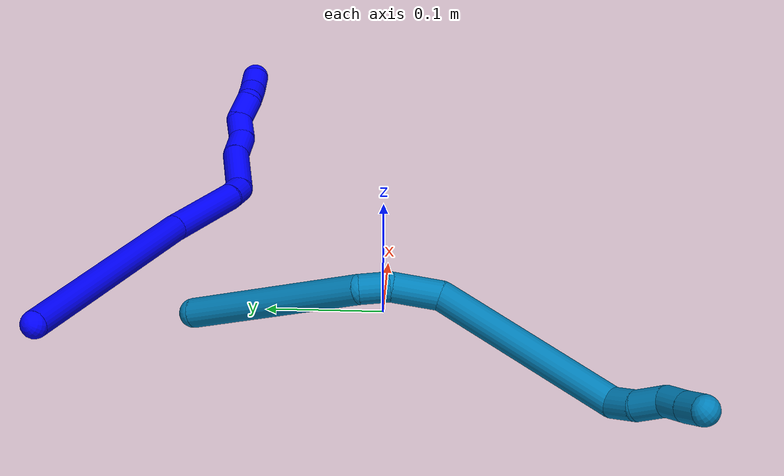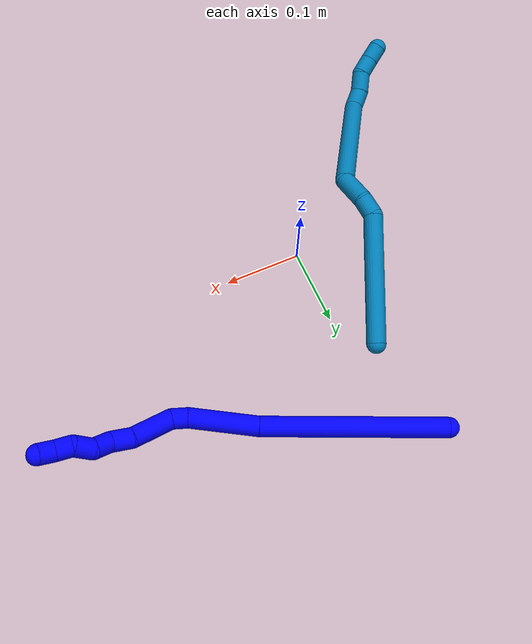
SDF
<sdf version="1.7">
 <world name="default">
  <model name="1">
   <static>0</static>
   <link name="1">
    <collision name="collision-cylinder-e_1_1_4">
     <pose>0.052959 -0.012417 0.09868 0.125169 0.489285 0.031286</pose>
     <geometry><cylinder><radius>0.0125</radius><length>0.225358</length></cylinder></geometry>
     <surface>
      <friction><ode><mu>1.16</mu><mu2>1.16</mu2><slip1>0</slip1><slip2>0</slip2></ode></friction>
      <contact><ode><kp>1e+06</kp><kd>1</kd><max_vel>0</max_vel><min_depth>0.001</min_depth></ode></contact>
     </surface>
    </collision>
    <visual name="visual-cylinder-e_1_1_4">
     <pose>0.052959 -0.012417 0.09868 0.125169 0.489285 0.031286</pose>
     <geometry><cylinder><radius>0.0125</radius><length>0.225358</length></cylinder></geometry>
     <material><ambient>0 0 1 1</ambient></material>
    </visual>
    <collision name="collision-cylinder-e_2_4_5">
     <pose>0.126225 -0.02467 0.234997 -0.00434 0.494817 -0.001096</pose>
     <geometry><cylinder><radius>0.0125</radius><length>0.085532</length></cylinder></geometry>
     <surface>
      <friction><ode><mu>1.16</mu><mu2>1.16</mu2><slip1>0</slip1><slip2>0</slip2></ode></friction>
      <contact><ode><kp>1e+06</kp><kd>1</kd><max_vel>0</max_vel><min_depth>0.001</min_depth></ode></contact>
     </surface>
    </collision>
    <visual name="visual-cylinder-e_2_4_5">
     <pose>0.126225 -0.02467 0.234997 -0.00434 0.494817 -0.001096</pose>
     <geometry><cylinder><radius>0.0125</radius><length>0.085532</length></cylinder></geometry>
     <material><ambient>0 0 1 1</ambient></material>
    </visual>
    <collision name="collision-cylinder-e_3_5_6">
     <pose>0.151455 -0.026395 0.281561 0.208435 0.494575 0.0528</pose>
     <geometry><cylinder><radius>0.0125</radius><length>0.020736</length></cylinder></geometry>
     <surface>
      <friction><ode><mu>1.16</mu><mu2>1.16</mu2><slip1>0</slip1><slip2>0</slip2></ode></friction>
      <contact><ode><kp>1e+06</kp><kd>1</kd><max_vel>0</max_vel><min_depth>0.001</min_depth></ode></contact>
     </surface>
    </collision>
    <visual name="visual-cylinder-e_3_5_6">
     <pose>0.151455 -0.026395 0.281561 0.208435 0.494575 0.0528</pose>
     <geometry><cylinder><radius>0.0125</radius><length>0.020736</length></cylinder></geometry>
     <material><ambient>0 0 1 1</ambient></material>
    </visual>
    <collision name="collision-cylinder-e_4_6_7">
     <pose>0.173511 -0.043278 0.30361 0.851908 0.710239 0.333403</pose>
     <geometry><cylinder><radius>0.0125</radius><length>0.052559</length></cylinder></geometry>
     <surface>
      <friction><ode><mu>1.16</mu><mu2>1.16</mu2><slip1>0</slip1><slip2>0</slip2></ode></friction>
      <contact><ode><kp>1e+06</kp><kd>1</kd><max_vel>0</max_vel><min_depth>0.001</min_depth></ode></contact>
     </surface>
    </collision>
    <visual name="visual-cylinder-e_4_6_7">
     <pose>0.173511 -0.043278 0.30361 0.851908 0.710239 0.333403</pose>
     <geometry><cylinder><radius>0.0125</radius><length>0.052559</length></cylinder></geometry>
     <material><ambient>0 0 1 1</ambient></material>
    </visual>
    <collision name="collision-cylinder-e_5_7_8">
     <pose>0.19982 -0.062773 0.325468 0.475736 0.751078 0.190599</pose>
     <geometry><cylinder><radius>0.0125</radius><length>0.026888</length></cylinder></geometry>
     <surface>
      <friction><ode><mu>1.16</mu><mu2>1.16</mu2><slip1>0</slip1><slip2>0</slip2></ode></friction>
      <contact><ode><kp>1e+06</kp><kd>1</kd><max_vel>0</max_vel><min_depth>0.001</min_depth></ode></contact>
     </surface>
    </collision>
    <visual name="visual-cylinder-e_5_7_8">
     <pose>0.19982 -0.062773 0.325468 0.475736 0.751078 0.190599</pose>
     <geometry><cylinder><radius>0.0125</radius><length>0.026888</length></cylinder></geometry>
     <material><ambient>0 0 1 1</ambient></material>
    </visual>
    <collision name="collision-cylinder-e_6_8_9">
     <pose>0.218655 -0.073269 0.337619 1.05292 0.950582 0.581249</pose>
     <geometry><cylinder><radius>0.0125</radius><length>0.023744</length></cylinder></geometry>
     <surface>
      <friction><ode><mu>1.16</mu><mu2>1.16</mu2><slip1>0</slip1><slip2>0</slip2></ode></friction>
      <contact><ode><kp>1e+06</kp><kd>1</kd><max_vel>0</max_vel><min_depth>0.001</min_depth></ode></contact>
     </surface>
    </collision>
    <visual name="visual-cylinder-e_6_8_9">
     <pose>0.218655 -0.073269 0.337619 1.05292 0.950582 0.581249</pose>
     <geometry><cylinder><radius>0.0125</radius><length>0.023744</length></cylinder></geometry>
     <material><ambient>0 0 1 1</ambient></material>
    </visual>
    <collision name="collision-cylinder-e_7_9_10">
     <pose>0.239248 -0.079718 0.347064 0.075242 1.06565 0.044386</pose>
     <geometry><cylinder><radius>0.0125</radius><length>0.024986</length></cylinder></geometry>
     <surface>
      <friction><ode><mu>1.16</mu><mu2>1.16</mu2><slip1>0</slip1><slip2>0</slip2></ode></friction>
      <contact><ode><kp>1e+06</kp><kd>1</kd><max_vel>0</max_vel><min_depth>0.001</min_depth></ode></contact>
     </surface>
    </collision>
    <visual name="visual-cylinder-e_7_9_10">
     <pose>0.239248 -0.079718 0.347064 0.075242 1.06565 0.044386</pose>
     <geometry><cylinder><radius>0.0125</radius><length>0.024986</length></cylinder></geometry>
     <material><ambient>0 0 1 1</ambient></material>
    </visual>
    <collision name="collision-cylinder-e_8_10_11">
     <pose>0.256061 -0.084327 0.360164 0.53118 0.622002 0.174425</pose>
     <geometry><cylinder><radius>0.0125</radius><length>0.020183</length></cylinder></geometry>
     <surface>
      <friction><ode><mu>1.16</mu><mu2>1.16</mu2><slip1>0</slip1><slip2>0</slip2></ode></friction>
      <contact><ode><kp>1e+06</kp><kd>1</kd><max_vel>0</max_vel><min_depth>0.001</min_depth></ode></contact>
     </surface>
    </collision>
    <visual name="visual-cylinder-e_8_10_11">
     <pose>0.256061 -0.084327 0.360164 0.53118 0.622002 0.174425</pose>
     <geometry><cylinder><radius>0.0125</radius><length>0.020183</length></cylinder></geometry>
     <material><ambient>0 0 1 1</ambient></material>
    </visual>
    <collision name="collision-cylinder-e_9_11_2">
     <pose>0.269401 -0.092162 0.372799 0.584389 0.841222 0.267496</pose>
     <geometry><cylinder><radius>0.0125</radius><length>0.020015</length></cylinder></geometry>
     <surface>
      <friction><ode><mu>1.16</mu><mu2>1.16</mu2><slip1>0</slip1><slip2>0</slip2></ode></friction>
      <contact><ode><kp>1e+06</kp><kd>1</kd><max_vel>0</max_vel><min_depth>0.001</min_depth></ode></contact>
     </surface>
    </collision>
    <visual name="visual-cylinder-e_9_11_2">
     <pose>0.269401 -0.092162 0.372799 0.584389 0.841222 0.267496</pose>
     <geometry><cylinder><radius>0.0125</radius><length>0.020015</length></cylinder></geometry>
     <material><ambient>0 0 1 1</ambient></material>
    </visual>
    <collision name="collision-sphere-2">
     <pose>0.276861 -0.095842 0.378362 0 -0 0</pose>
     <geometry><sphere><radius>0.0125</radius></sphere></geometry>
     <surface>
      <friction><ode><mu>1.16</mu><mu2>1.16</mu2><slip1>0</slip1><slip2>0</slip2></ode></friction>
      <contact><ode><kp>1e+06</kp><kd>1</kd><max_vel>0</max_vel><min_depth>0.001</min_depth></ode></contact>
     </surface>
    </collision>
    <visual name="visual-sphere-2">
     <pose>0.276861 -0.095842 0.378362 0 -0 0</pose>
     <geometry><sphere><radius>0.0125</radius></sphere></geometry>
     <material><ambient>0 0 1 1</ambient></material>
    </visual>
    <collision name="collision-sphere-11">
     <pose>0.261941 -0.088482 0.367235 0 -0 0</pose>
     <geometry><sphere><radius>0.0125</radius></sphere></geometry>
     <surface>
      <friction><ode><mu>1.16</mu><mu2>1.16</mu2><slip1>0</slip1><slip2>0</slip2></ode></friction>
      <contact><ode><kp>1e+06</kp><kd>1</kd><max_vel>0</max_vel><min_depth>0.001</min_depth></ode></contact>
     </surface>
    </collision>
    <visual name="visual-sphere-11">
     <pose>0.261941 -0.088482 0.367235 0 -0 0</pose>
     <geometry><sphere><radius>0.0125</radius></sphere></geometry>
     <material><ambient>0 0 1 1</ambient></material>
    </visual>
    <collision name="collision-sphere-10">
     <pose>0.250181 -0.080173 0.353092 0 -0 0</pose>
     <geometry><sphere><radius>0.0125</radius></sphere></geometry>
     <surface>
      <friction><ode><mu>1.16</mu><mu2>1.16</mu2><slip1>0</slip1><slip2>0</slip2></ode></friction>
      <contact><ode><kp>1e+06</kp><kd>1</kd><max_vel>0</max_vel><min_depth>0.001</min_depth></ode></contact>
     </surface>
    </collision>
    <visual name="visual-sphere-10">
     <pose>0.250181 -0.080173 0.353092 0 -0 0</pose>
     <geometry><sphere><radius>0.0125</radius></sphere></geometry>
     <material><ambient>0 0 1 1</ambient></material>
    </visual>
    <collision name="collision-sphere-9">
     <pose>0.228316 -0.079264 0.341035 0 -0 0</pose>
     <geometry><sphere><radius>0.0125</radius></sphere></geometry>
     <surface>
      <friction><ode><mu>1.16</mu><mu2>1.16</mu2><slip1>0</slip1><slip2>0</slip2></ode></friction>
      <contact><ode><kp>1e+06</kp><kd>1</kd><max_vel>0</max_vel><min_depth>0.001</min_depth></ode></contact>
     </surface>
    </collision>
    <visual name="visual-sphere-9">
     <pose>0.228316 -0.079264 0.341035 0 -0 0</pose>
     <geometry><sphere><radius>0.0125</radius></sphere></geometry>
     <material><ambient>0 0 1 1</ambient></material>
    </visual>
    <collision name="collision-sphere-4">
     <pose>0.105917 -0.024833 0.197361 0 -0 0</pose>
     <geometry><sphere><radius>0.0125</radius></sphere></geometry>
     <surface>
      <friction><ode><mu>1.16</mu><mu2>1.16</mu2><slip1>0</slip1><slip2>0</slip2></ode></friction>
      <contact><ode><kp>1e+06</kp><kd>1</kd><max_vel>0</max_vel><min_depth>0.001</min_depth></ode></contact>
     </surface>
    </collision>
    <visual name="visual-sphere-4">
     <pose>0.105917 -0.024833 0.197361 0 -0 0</pose>
     <geometry><sphere><radius>0.0125</radius></sphere></geometry>
     <material><ambient>0 0 1 1</ambient></material>
    </visual>
    <collision name="collision-sphere-1">
     <geometry><sphere><radius>0.0125</radius></sphere></geometry>
     <surface>
      <friction><ode><mu>1.16</mu><mu2>1.16</mu2><slip1>0</slip1><slip2>0</slip2></ode></friction>
      <contact><ode><kp>1e+06</kp><kd>1</kd><max_vel>0</max_vel><min_depth>0.001</min_depth></ode></contact>
     </surface>
    </collision>
    <visual name="visual-sphere-1">
     <geometry><sphere><radius>0.0125</radius></sphere></geometry>
     <material><ambient>0 0 1 1</ambient></material>
    </visual>
    <collision name="collision-sphere-8">
     <pose>0.208994 -0.067274 0.334203 0 -0 0</pose>
     <geometry><sphere><radius>0.0125</radius></sphere></geometry>
     <surface>
      <friction><ode><mu>1.16</mu><mu2>1.16</mu2><slip1>0</slip1><slip2>0</slip2></ode></friction>
      <contact><ode><kp>1e+06</kp><kd>1</kd><max_vel>0</max_vel><min_depth>0.001</min_depth></ode></contact>
     </surface>
    </collision>
    <visual name="visual-sphere-8">
     <pose>0.208994 -0.067274 0.334203 0 -0 0</pose>
     <geometry><sphere><radius>0.0125</radius></sphere></geometry>
     <material><ambient>0 0 1 1</ambient></material>
    </visual>
    <collision name="collision-sphere-5">
     <pose>0.146534 -0.024507 0.272633 0 -0 0</pose>
     <geometry><sphere><radius>0.0125</radius></sphere></geometry>
     <surface>
      <friction><ode><mu>1.16</mu><mu2>1.16</mu2><slip1>0</slip1><slip2>0</slip2></ode></friction>
      <contact><ode><kp>1e+06</kp><kd>1</kd><max_vel>0</max_vel><min_depth>0.001</min_depth></ode></contact>
     </surface>
    </collision>
    <visual name="visual-sphere-5">
     <pose>0.146534 -0.024507 0.272633 0 -0 0</pose>
     <geometry><sphere><radius>0.0125</radius></sphere></geometry>
     <material><ambient>0 0 1 1</ambient></material>
    </visual>
    <collision name="collision-sphere-6">
     <pose>0.156376 -0.028283 0.290489 0 -0 0</pose>
     <geometry><sphere><radius>0.0125</radius></sphere></geometry>
     <surface>
      <friction><ode><mu>1.16</mu><mu2>1.16</mu2><slip1>0</slip1><slip2>0</slip2></ode></friction>
      <contact><ode><kp>1e+06</kp><kd>1</kd><max_vel>0</max_vel><min_depth>0.001</min_depth></ode></contact>
     </surface>
    </collision>
    <visual name="visual-sphere-6">
     <pose>0.156376 -0.028283 0.290489 0 -0 0</pose>
     <geometry><sphere><radius>0.0125</radius></sphere></geometry>
     <material><ambient>0 0 1 1</ambient></material>
    </visual>
    <collision name="collision-sphere-7">
     <pose>0.190645 -0.058272 0.316732 0 -0 0</pose>
     <geometry><sphere><radius>0.0125</radius></sphere></geometry>
     <surface>
      <friction><ode><mu>1.16</mu><mu2>1.16</mu2><slip1>0</slip1><slip2>0</slip2></ode></friction>
      <contact><ode><kp>1e+06</kp><kd>1</kd><max_vel>0</max_vel><min_depth>0.001</min_depth></ode></contact>
     </surface>
    </collision>
    <visual name="visual-sphere-7">
     <pose>0.190645 -0.058272 0.316732 0 -0 0</pose>
     <geometry><sphere><radius>0.0125</radius></sphere></geometry>
     <material><ambient>0 0 1 1</ambient></material>
    </visual>
    <inertial>
     <pose>0.124187 -0.033392 0.208607 0 -0 0</pose>
     <mass>0.5</mass>
     <inertia>
      <ixx>0.000969</ixx>
      <ixy>0</ixy>
      <ixz>0</ixz>
      <iyy>0.001058</iyy>
      <iyz>0</iyz>
      <izz>-0.000349</izz>
     </inertia>
    </inertial>
   </link>
   <pose>-0.064449 0.287908 0.011711 2.85591 -1.07517 -0.275014</pose>
  </model>
  <model name="9">
   <static>0</static>
   <link name="9">
    <collision name="collision-cylinder-e_1_1_4">
     <pose>-0.040762 -0.069526 -0.015844 1.79486 -0.519304 -0.642901</pose>
     <geometry><cylinder><radius>0.0125</radius><length>0.164273</length></cylinder></geometry>
     <surface>
      <friction><ode><mu>1.16</mu><mu2>1.16</mu2><slip1>0</slip1><slip2>0</slip2></ode></friction>
      <contact><ode><kp>1e+06</kp><kd>1</kd><max_vel>0</max_vel><min_depth>0.001</min_depth></ode></contact>
     </surface>
    </collision>
    <visual name="visual-cylinder-e_1_1_4">
     <pose>-0.040762 -0.069526 -0.015844 1.79486 -0.519304 -0.642901</pose>
     <geometry><cylinder><radius>0.0125</radius><length>0.164273</length></cylinder></geometry>
     <material><ambient>0 0.490196 0.709804 1</ambient></material>
    </visual>
    <collision name="collision-cylinder-e_2_4_5">
     <pose>-0.083121 -0.149376 -0.038966 2.18472 -0.125706 -0.241524</pose>
     <geometry><cylinder><radius>0.0125</radius><length>0.025464</length></cylinder></geometry>
     <surface>
      <friction><ode><mu>1.16</mu><mu2>1.16</mu2><slip1>0</slip1><slip2>0</slip2></ode></friction>
      <contact><ode><kp>1e+06</kp><kd>1</kd><max_vel>0</max_vel><min_depth>0.001</min_depth></ode></contact>
     </surface>
    </collision>
    <visual name="visual-cylinder-e_2_4_5">
     <pose>-0.083121 -0.149376 -0.038966 2.18472 -0.125706 -0.241524</pose>
     <geometry><cylinder><radius>0.0125</radius><length>0.025464</length></cylinder></geometry>
     <material><ambient>0 0.490196 0.709804 1</ambient></material>
    </visual>
    <collision name="collision-cylinder-e_3_5_6">
     <pose>-0.087483 -0.17244 -0.062808 2.48604 -0.131594 -0.382806</pose>
     <geometry><cylinder><radius>0.0125</radius><length>0.042159</length></cylinder></geometry>
     <surface>
      <friction><ode><mu>1.16</mu><mu2>1.16</mu2><slip1>0</slip1><slip2>0</slip2></ode></friction>
      <contact><ode><kp>1e+06</kp><kd>1</kd><max_vel>0</max_vel><min_depth>0.001</min_depth></ode></contact>
     </surface>
    </collision>
    <visual name="visual-cylinder-e_3_5_6">
     <pose>-0.087483 -0.17244 -0.062808 2.48604 -0.131594 -0.382806</pose>
     <geometry><cylinder><radius>0.0125</radius><length>0.042159</length></cylinder></geometry>
     <material><ambient>0 0.490196 0.709804 1</ambient></material>
    </visual>
    <collision name="collision-cylinder-e_4_6_7">
     <pose>-0.150145 -0.218425 -0.128093 2.54277 -0.793078 -1.87105</pose>
     <geometry><cylinder><radius>0.0125</radius><length>0.168124</length></cylinder></geometry>
     <surface>
      <friction><ode><mu>1.16</mu><mu2>1.16</mu2><slip1>0</slip1><slip2>0</slip2></ode></friction>
      <contact><ode><kp>1e+06</kp><kd>1</kd><max_vel>0</max_vel><min_depth>0.001</min_depth></ode></contact>
     </surface>
    </collision>
    <visual name="visual-cylinder-e_4_6_7">
     <pose>-0.150145 -0.218425 -0.128093 2.54277 -0.793078 -1.87105</pose>
     <geometry><cylinder><radius>0.0125</radius><length>0.168124</length></cylinder></geometry>
     <material><ambient>0 0.490196 0.709804 1</ambient></material>
    </visual>
    <collision name="collision-cylinder-e_5_7_8">
     <pose>-0.219772 -0.25988 -0.177398 1.64208 -0.86888 -0.924607</pose>
     <geometry><cylinder><radius>0.0125</radius><length>0.02549</length></cylinder></geometry>
     <surface>
      <friction><ode><mu>1.16</mu><mu2>1.16</mu2><slip1>0</slip1><slip2>0</slip2></ode></friction>
      <contact><ode><kp>1e+06</kp><kd>1</kd><max_vel>0</max_vel><min_depth>0.001</min_depth></ode></contact>
     </surface>
    </collision>
    <visual name="visual-cylinder-e_5_7_8">
     <pose>-0.219772 -0.25988 -0.177398 1.64208 -0.86888 -0.924607</pose>
     <geometry><cylinder><radius>0.0125</radius><length>0.02549</length></cylinder></geometry>
     <material><ambient>0 0.490196 0.709804 1</ambient></material>
    </visual>
    <collision name="collision-cylinder-e_6_8_9">
     <pose>-0.23693 -0.279517 -0.178883 1.64927 -0.574793 -0.618926</pose>
     <geometry><cylinder><radius>0.0125</radius><length>0.027317</length></cylinder></geometry>
     <surface>
      <friction><ode><mu>1.16</mu><mu2>1.16</mu2><slip1>0</slip1><slip2>0</slip2></ode></friction>
      <contact><ode><kp>1e+06</kp><kd>1</kd><max_vel>0</max_vel><min_depth>0.001</min_depth></ode></contact>
     </surface>
    </collision>
    <visual name="visual-cylinder-e_6_8_9">
     <pose>-0.23693 -0.279517 -0.178883 1.64927 -0.574793 -0.618926</pose>
     <geometry><cylinder><radius>0.0125</radius><length>0.027317</length></cylinder></geometry>
     <material><ambient>0 0.490196 0.709804 1</ambient></material>
    </visual>
    <collision name="collision-cylinder-e_7_9_10">
     <pose>-0.254605 -0.297214 -0.179456 1.51877 -1.02124 -0.977466</pose>
     <geometry><cylinder><radius>0.0125</radius><length>0.024038</length></cylinder></geometry>
     <surface>
      <friction><ode><mu>1.16</mu><mu2>1.16</mu2><slip1>0</slip1><slip2>0</slip2></ode></friction>
      <contact><ode><kp>1e+06</kp><kd>1</kd><max_vel>0</max_vel><min_depth>0.001</min_depth></ode></contact>
     </surface>
    </collision>
    <visual name="visual-cylinder-e_7_9_10">
     <pose>-0.254605 -0.297214 -0.179456 1.51877 -1.02124 -0.977466</pose>
     <geometry><cylinder><radius>0.0125</radius><length>0.024038</length></cylinder></geometry>
     <material><ambient>0 0.490196 0.709804 1</ambient></material>
    </visual>
    <collision name="collision-cylinder-e_8_10_2">
     <pose>-0.274536 -0.309675 -0.177808 1.36053 -0.9917 -0.825092</pose>
     <geometry><cylinder><radius>0.0125</radius><length>0.023135</length></cylinder></geometry>
     <surface>
      <friction><ode><mu>1.16</mu><mu2>1.16</mu2><slip1>0</slip1><slip2>0</slip2></ode></friction>
      <contact><ode><kp>1e+06</kp><kd>1</kd><max_vel>0</max_vel><min_depth>0.001</min_depth></ode></contact>
     </surface>
    </collision>
    <visual name="visual-cylinder-e_8_10_2">
     <pose>-0.274536 -0.309675 -0.177808 1.36053 -0.9917 -0.825092</pose>
     <geometry><cylinder><radius>0.0125</radius><length>0.023135</length></cylinder></geometry>
     <material><ambient>0 0.490196 0.709804 1</ambient></material>
    </visual>
    <collision name="collision-sphere-2">
     <pose>-0.284217 -0.315866 -0.176486 0 -0 0</pose>
     <geometry><sphere><radius>0.0125</radius></sphere></geometry>
     <surface>
      <friction><ode><mu>1.16</mu><mu2>1.16</mu2><slip1>0</slip1><slip2>0</slip2></ode></friction>
      <contact><ode><kp>1e+06</kp><kd>1</kd><max_vel>0</max_vel><min_depth>0.001</min_depth></ode></contact>
     </surface>
    </collision>
    <visual name="visual-sphere-2">
     <pose>-0.284217 -0.315866 -0.176486 0 -0 0</pose>
     <geometry><sphere><radius>0.0125</radius></sphere></geometry>
     <material><ambient>0 0.490196 0.709804 1</ambient></material>
    </visual>
    <collision name="collision-sphere-10">
     <pose>-0.264855 -0.303484 -0.179129 0 -0 0</pose>
     <geometry><sphere><radius>0.0125</radius></sphere></geometry>
     <surface>
      <friction><ode><mu>1.16</mu><mu2>1.16</mu2><slip1>0</slip1><slip2>0</slip2></ode></friction>
      <contact><ode><kp>1e+06</kp><kd>1</kd><max_vel>0</max_vel><min_depth>0.001</min_depth></ode></contact>
     </surface>
    </collision>
    <visual name="visual-sphere-10">
     <pose>-0.264855 -0.303484 -0.179129 0 -0 0</pose>
     <geometry><sphere><radius>0.0125</radius></sphere></geometry>
     <material><ambient>0 0.490196 0.709804 1</ambient></material>
    </visual>
    <collision name="collision-sphere-9">
     <pose>-0.244356 -0.290945 -0.179782 0 -0 0</pose>
     <geometry><sphere><radius>0.0125</radius></sphere></geometry>
     <surface>
      <friction><ode><mu>1.16</mu><mu2>1.16</mu2><slip1>0</slip1><slip2>0</slip2></ode></friction>
      <contact><ode><kp>1e+06</kp><kd>1</kd><max_vel>0</max_vel><min_depth>0.001</min_depth></ode></contact>
     </surface>
    </collision>
    <visual name="visual-sphere-9">
     <pose>-0.244356 -0.290945 -0.179782 0 -0 0</pose>
     <geometry><sphere><radius>0.0125</radius></sphere></geometry>
     <material><ambient>0 0.490196 0.709804 1</ambient></material>
    </visual>
    <collision name="collision-sphere-4">
     <pose>-0.081525 -0.139051 -0.031689 0 -0 0</pose>
     <geometry><sphere><radius>0.0125</radius></sphere></geometry>
     <surface>
      <friction><ode><mu>1.16</mu><mu2>1.16</mu2><slip1>0</slip1><slip2>0</slip2></ode></friction>
      <contact><ode><kp>1e+06</kp><kd>1</kd><max_vel>0</max_vel><min_depth>0.001</min_depth></ode></contact>
     </surface>
    </collision>
    <visual name="visual-sphere-4">
     <pose>-0.081525 -0.139051 -0.031689 0 -0 0</pose>
     <geometry><sphere><radius>0.0125</radius></sphere></geometry>
     <material><ambient>0 0.490196 0.709804 1</ambient></material>
    </visual>
    <collision name="collision-sphere-1">
     <geometry><sphere><radius>0.0125</radius></sphere></geometry>
     <surface>
      <friction><ode><mu>1.16</mu><mu2>1.16</mu2><slip1>0</slip1><slip2>0</slip2></ode></friction>
      <contact><ode><kp>1e+06</kp><kd>1</kd><max_vel>0</max_vel><min_depth>0.001</min_depth></ode></contact>
     </surface>
    </collision>
    <visual name="visual-sphere-1">
     <geometry><sphere><radius>0.0125</radius></sphere></geometry>
     <material><ambient>0 0.490196 0.709804 1</ambient></material>
    </visual>
    <collision name="collision-sphere-8">
     <pose>-0.229505 -0.268088 -0.177985 0 -0 0</pose>
     <geometry><sphere><radius>0.0125</radius></sphere></geometry>
     <surface>
      <friction><ode><mu>1.16</mu><mu2>1.16</mu2><slip1>0</slip1><slip2>0</slip2></ode></friction>
      <contact><ode><kp>1e+06</kp><kd>1</kd><max_vel>0</max_vel><min_depth>0.001</min_depth></ode></contact>
     </surface>
    </collision>
    <visual name="visual-sphere-8">
     <pose>-0.229505 -0.268088 -0.177985 0 -0 0</pose>
     <geometry><sphere><radius>0.0125</radius></sphere></geometry>
     <material><ambient>0 0.490196 0.709804 1</ambient></material>
    </visual>
    <collision name="collision-sphere-5">
     <pose>-0.084717 -0.159701 -0.046243 0 -0 0</pose>
     <geometry><sphere><radius>0.0125</radius></sphere></geometry>
     <surface>
      <friction><ode><mu>1.16</mu><mu2>1.16</mu2><slip1>0</slip1><slip2>0</slip2></ode></friction>
      <contact><ode><kp>1e+06</kp><kd>1</kd><max_vel>0</max_vel><min_depth>0.001</min_depth></ode></contact>
     </surface>
    </collision>
    <visual name="visual-sphere-5">
     <pose>-0.084717 -0.159701 -0.046243 0 -0 0</pose>
     <geometry><sphere><radius>0.0125</radius></sphere></geometry>
     <material><ambient>0 0.490196 0.709804 1</ambient></material>
    </visual>
    <collision name="collision-sphere-6">
     <pose>-0.090249 -0.185179 -0.079373 0 -0 0</pose>
     <geometry><sphere><radius>0.0125</radius></sphere></geometry>
     <surface>
      <friction><ode><mu>1.16</mu><mu2>1.16</mu2><slip1>0</slip1><slip2>0</slip2></ode></friction>
      <contact><ode><kp>1e+06</kp><kd>1</kd><max_vel>0</max_vel><min_depth>0.001</min_depth></ode></contact>
     </surface>
    </collision>
    <visual name="visual-sphere-6">
     <pose>-0.090249 -0.185179 -0.079373 0 -0 0</pose>
     <geometry><sphere><radius>0.0125</radius></sphere></geometry>
     <material><ambient>0 0.490196 0.709804 1</ambient></material>
    </visual>
    <collision name="collision-sphere-7">
     <pose>-0.21004 -0.251672 -0.176812 0 -0 0</pose>
     <geometry><sphere><radius>0.0125</radius></sphere></geometry>
     <surface>
      <friction><ode><mu>1.16</mu><mu2>1.16</mu2><slip1>0</slip1><slip2>0</slip2></ode></friction>
      <contact><ode><kp>1e+06</kp><kd>1</kd><max_vel>0</max_vel><min_depth>0.001</min_depth></ode></contact>
     </surface>
    </collision>
    <visual name="visual-sphere-7">
     <pose>-0.21004 -0.251672 -0.176812 0 -0 0</pose>
     <geometry><sphere><radius>0.0125</radius></sphere></geometry>
     <material><ambient>0 0.490196 0.709804 1</ambient></material>
    </visual>
    <inertial>
     <pose>-0.124579 -0.175572 -0.091228 0 -0 0</pose>
     <mass>0.5</mass>
     <inertia>
      <ixx>-0.000304</ixx>
      <ixy>0</ixy>
      <ixz>0</ixz>
      <iyy>-0.000205</iyy>
      <iyz>0</iyz>
      <izz>0.000958</izz>
     </inertia>
    </inertial>
   </link>
   <pose>-0.035038 0.157829 0.011748 -0.716768 -0.151578 0.215386</pose>
  </model>
 </world>
</sdf>
